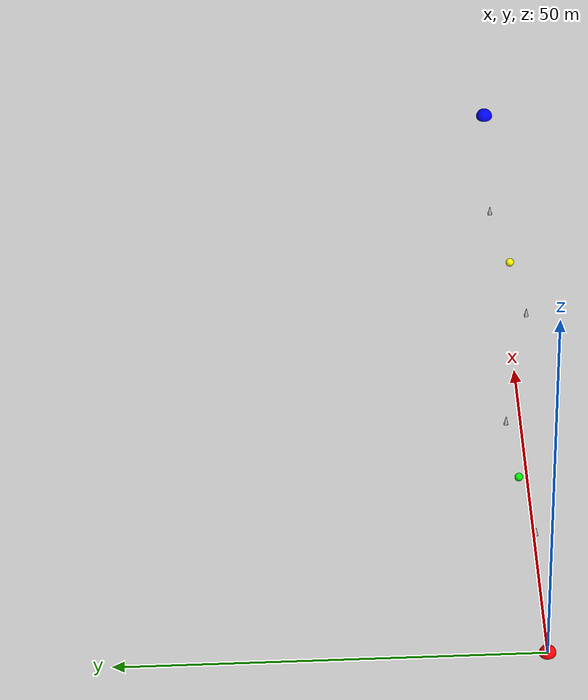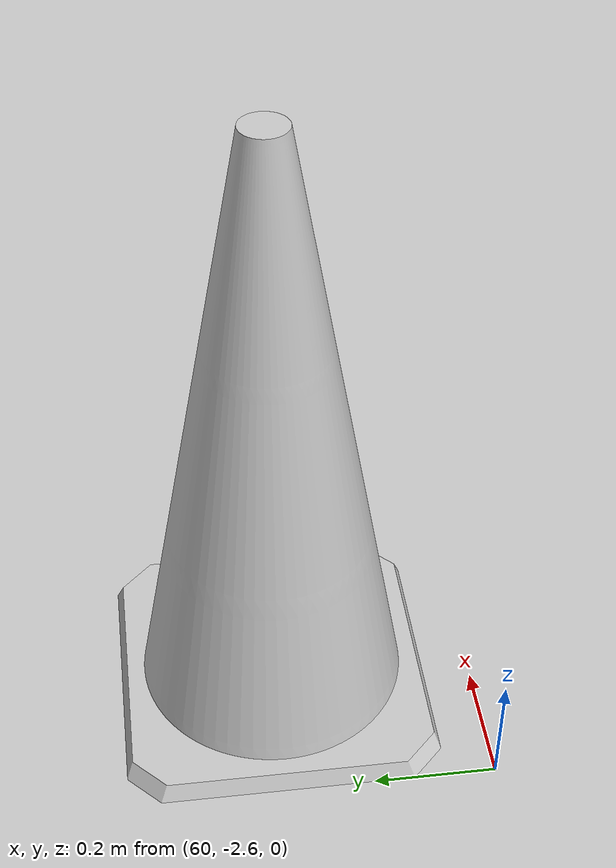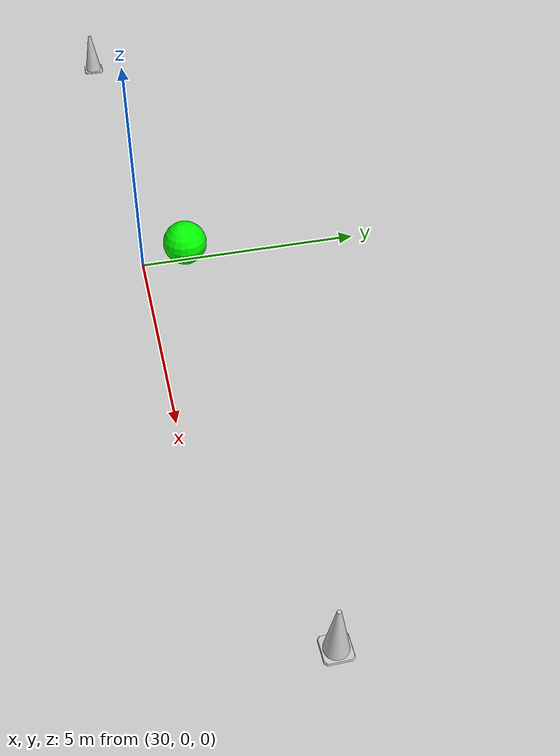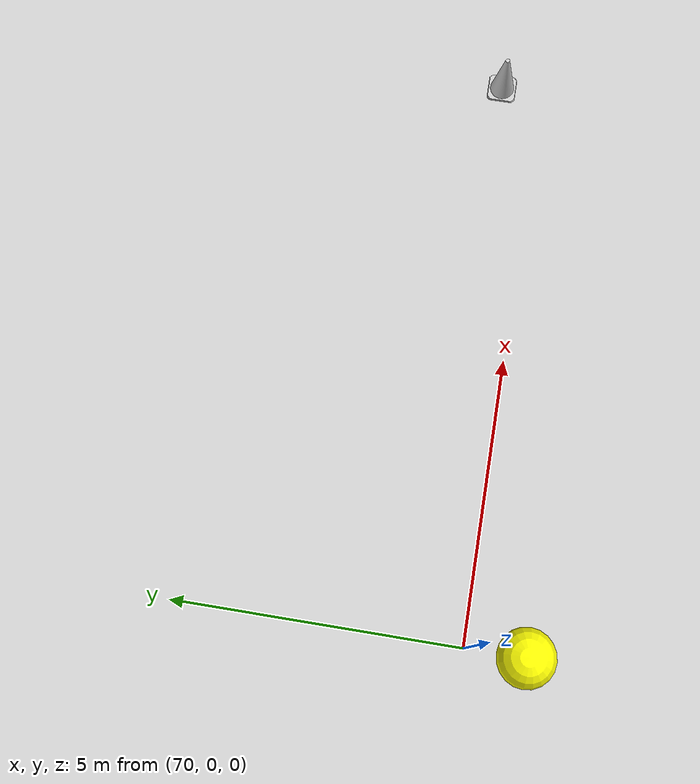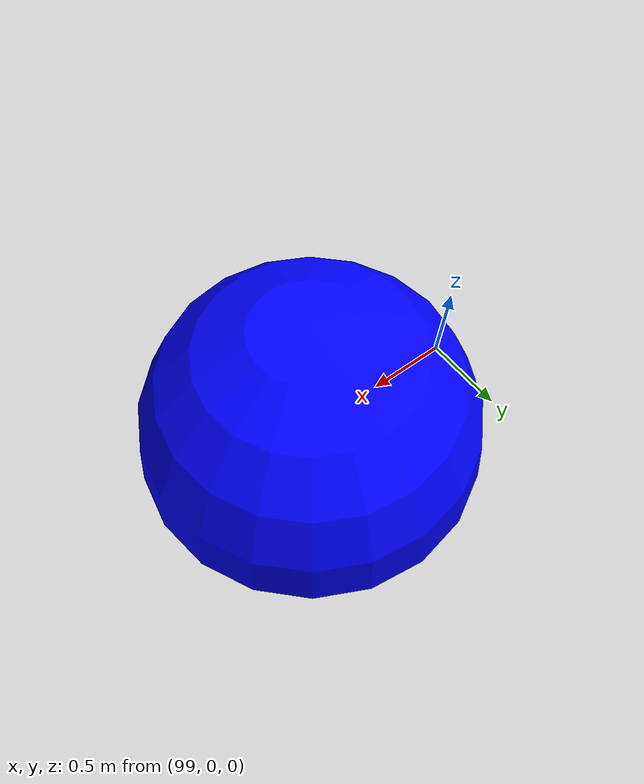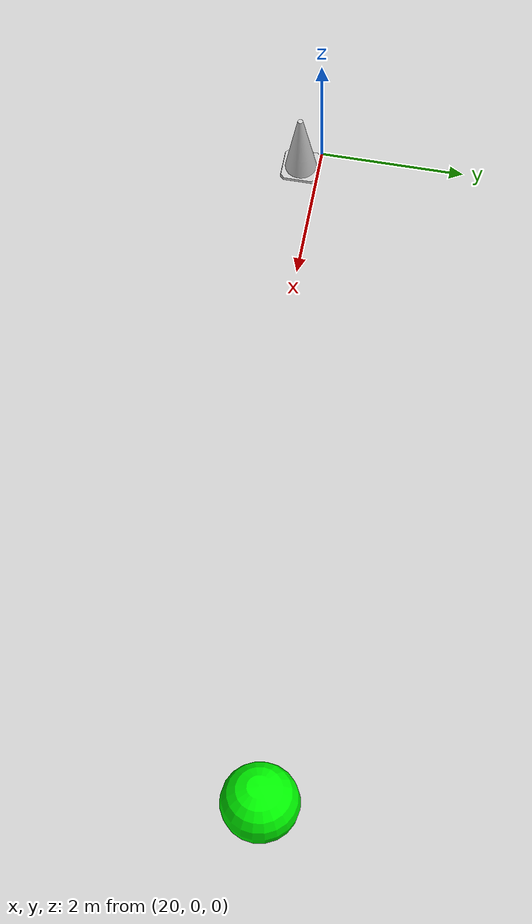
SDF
<sdf version="1.6">
 <world name="drone_test_world">
  <include><uri>model://ground_plane</uri></include>
  <include><uri>model://sun</uri></include>
  <scene><sky><clouds><speed>5</speed></clouds></sky></scene>
  <model name="target_origin">
   <static>true</static>
   <link name="link">
    <visual name="visual">
     <geometry><sphere><radius>1</radius></sphere></geometry>
     <material><ambient>1 0 0 1</ambient><diffuse>1 0 0 1</diffuse></material>
    </visual>
   </link>
  </model>
  <model name="target_far">
   <static>true</static>
   <pose>100 0 0 0 0 0</pose>
   <link name="link">
    <visual name="visual">
     <geometry><sphere><radius>1</radius></sphere></geometry>
     <material><ambient>0 0 1 1</ambient><diffuse>0 0 1 1</diffuse></material>
    </visual>
   </link>
  </model>
  <include><uri>model://traffic_cone</uri><pose>20 0 0 0 0 0</pose></include>
  <include><uri>model://traffic_cone</uri><pose>40 2 0 0 0 0</pose></include>
  <include><uri>model://traffic_cone</uri><pose>60 -2 0 0 0 0</pose></include>
  <include><uri>model://traffic_cone</uri><pose>80 1 0 0 0 0</pose></include>
  <model name="ball1">
   <static>true</static>
   <pose>30 1 0.5 0 0 0</pose>
   <link name="link">
    <visual name="visual">
     <geometry><sphere><radius>0.5</radius></sphere></geometry>
     <material><ambient>0 1 0 1</ambient><diffuse>0 1 0 1</diffuse></material>
    </visual>
   </link>
  </model>
  <model name="ball2">
   <static>true</static>
   <pose>70 -1 0.5 0 0 0</pose>
   <link name="link">
    <visual name="visual">
     <geometry><sphere><radius>0.5</radius></sphere></geometry>
     <material><ambient>1 1 0 1</ambient><diffuse>1 1 0 1</diffuse></material>
    </visual>
   </link>
  </model>
 </world>
</sdf>

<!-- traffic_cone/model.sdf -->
<sdf version="1.7">
<model name="traffic_cone" canonical_link="node0_link">
  <link name="node0_link">
    <collision name="node0_collision">
      <pose relative_to="node0_link">0.00000 0.00000 0.00000 0.00000 0.00000 0.00000</pose>
      <geometry>
        <mesh>
          <uri>meshes/Body.dae</uri>
          <scale>1.00000 1.00000 1.00000</scale>
        </mesh>
      </geometry>
      <surface>
        <contact><ode>  <max_vel>0.001</max_vel><min_depth>0.01</min_depth><kd>1e15</kd>  </ode></contact>
      </surface>
    </collision>
    <inertial>
      <inertia>
        <ixx>1.94536</ixx>
        <ixy>0.00000</ixy>
        <ixz>0.00544</ixz>
        <iyy>1.94538</iyy>
        <iyz>0.00000</iyz>
        <izz>0.25007</izz>
      </inertia>
      <pose relative_to="node0_link">0.26000 -0.26000 0.30336 0.00000 0.00000 0.00000</pose>
      <mass>10.00000</mass>
    </inertial>
    <visual name="node0">
      <material>
        <diffuse>0.80000 0.80000 0.80000 1.00000</diffuse>
        <specular>0.40000 0.40000 0.40000 0.49804</specular>
        <emissive>0.00000 0.00000 0.00000 1.00000</emissive>
      </material>
      <pose relative_to="node0_link">0.00000 0.00000 0.00000 0.00000 0.00000 0.00000</pose>
      <geometry>
        <mesh>
          <uri>meshes/Body.dae</uri>
          <scale>1.00000 1.00000 1.00000</scale>
        </mesh>
      </geometry>
    </visual>
  </link>
</model>
</sdf>
